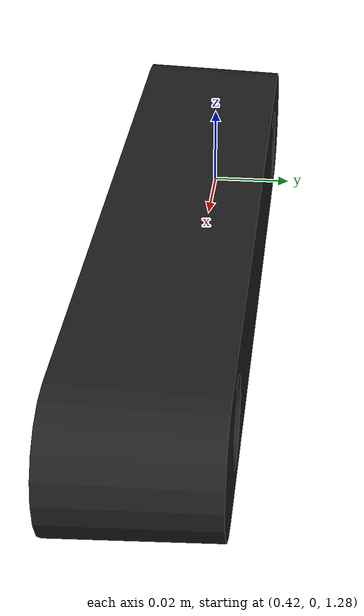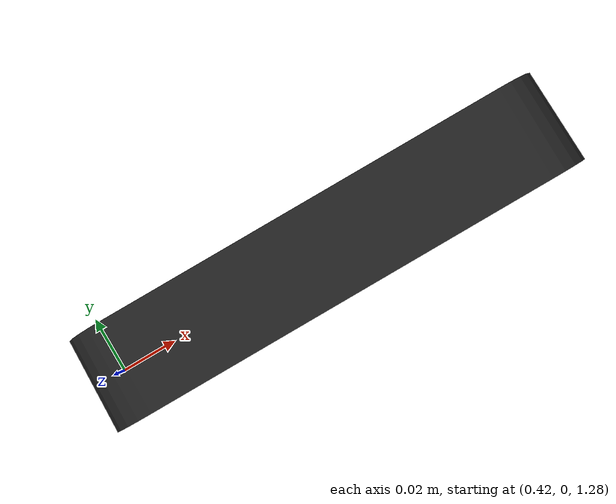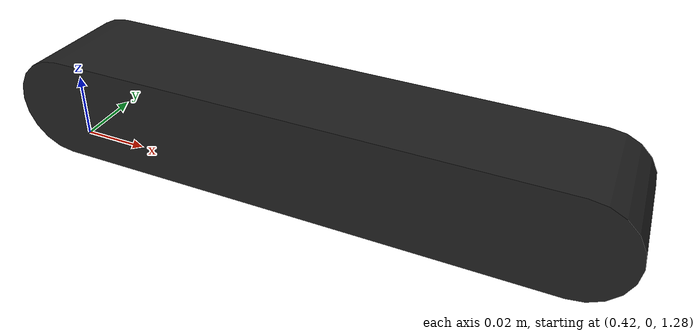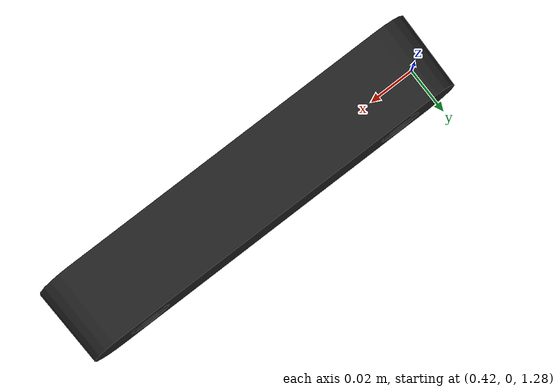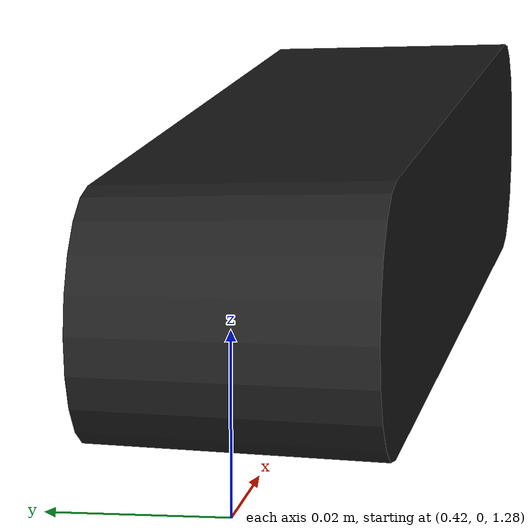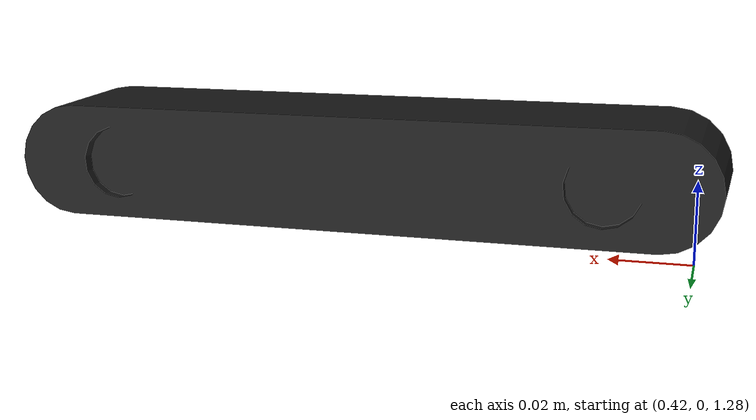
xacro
<?xml version="1.0"?>
<robot xmlns:xacro="http://www.ros.org/wiki/xacro" name="zed_standlone">

    <!-- zed2 -->
    <xacro:arg name="zed2_x" default="0.5"/>
    <xacro:arg name="zed2_y" default="0.0"/>
    <xacro:arg name="zed2_z" default="1.3"/>
    <xacro:arg name="zed2_roll" default="0.0"/>
    <xacro:arg name="zed2_pitch" default="0.0"/>
    <xacro:arg name="zed2_yaw" default="1.5707963267949"/>

    <xacro:property name="noise" value="0.000" />

    <link name="world"/>

    <joint name="fixed" type="fixed">
        <parent link="world"/>
        <child link="base_link"/>
    </joint>

    <link name="base_link"/>

    <!-- zed2 -->
    <xacro:include filename="$(find sensors_description)/urdf/zed2.urdf.xacro"/>
    <xacro:zed2_camera parent="base_link" camera_name="zed2" noise="${noise}">
        <origin xyz="$(arg zed2_x) $(arg zed2_y) $(arg zed2_z)" rpy="$(arg zed2_roll) $(arg zed2_pitch) $(arg zed2_yaw)" />
    </xacro:zed2_camera>

</robot>

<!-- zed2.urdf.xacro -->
<robot xmlns:xacro="http://www.ros.org/wiki/xacro" name="zed2_camera">

    <!-- Properties -->
    <xacro:property name="baseline" value="0.12"/>
    <xacro:property name="hfov" value="92.329636758468765228252815135916"/>
    <xacro:property name="M_PI" value="3.1415926535897931"/>

    <!-- Includes -->
    <xacro:include filename="$(find sensors_description)/materials/zed_materials.urdf.xacro"/>
    <xacro:include filename="$(find sensors_description)/urdf/camera.gazebo.xacro"/>

    <!-- Macro -->
    <xacro:macro name="zed2_camera"
                 params="*origin parent:=base_frame camera_name:=zed2 image_width:=2208 image_height:=1242 hz:=15 image_format:=B8G8R8 noise:=0.0">

        <!-- Camera body -->
        <joint name="${camera_name}_base_joint" type="fixed">
            <parent link="${parent}"/>
            <child link="${camera_name}_body"/>
            <xacro:insert_block name="origin"/>
        </joint>

        <link name="${camera_name}_body">
            <inertial>
                <origin
                        xyz="0 0 0"
                        rpy="0 0 0"/>
                <mass
                        value="1.2318"/>
                <inertia
                        ixx="0.0029695"
                        ixy="1.6071E-08"
                        ixz="7.94620000000098E-12"
                        iyy="0.0029965"
                        iyz="2.55599998283537E-11"
                        izz="0.00019321"/>
            </inertial>
            <visual>
                <origin xyz="0 0 0" rpy="0 0 0"/>
                <geometry>
                    <mesh filename="package://sensors_description/meshes/zed2.STL"/>
                </geometry>
                <material name="zed2_mat"/>
            </visual>
            <collision>
                <origin rpy="0 0 0" xyz="0 0 0"/>
                <geometry>
                    <mesh filename="package://sensors_description/meshes/zed2.STL"/>
                </geometry>
            </collision>
        </link>

        <gazebo reference="${camera_name}_body">
            <material>Gazebo/Black</material>
        </gazebo>

        <!-- Left Camera -->
        <joint name="${camera_name}_left_camera_joint" type="fixed">
            <parent link="${camera_name}_body"/>
            <child link="${camera_name}_left_frame"/>
            <origin xyz="0 ${baseline/2} 0" rpy="0.0 0.0 0.0" />
        </joint>

        <link name="${camera_name}_left_frame"/>

        <joint name="${camera_name}_left_optical_joint" type="fixed">
            <origin xyz="0 0 0" rpy="${-M_PI/2} 0.0 ${-M_PI/2}"/>
            <parent link="${camera_name}_left_frame"/>
            <child link="${camera_name}_left_optical_frame"/>
        </joint>

        <link name="${camera_name}_left_optical_frame"/>

        <xacro:rgb_gazebo reference="${camera_name}_left_frame" name="left_camera" image_width="${image_width}"
                          image_height="${image_height}" hz="${hz}" image_format="${image_format}"
                          frame_id="${camera_name}_left_optical_frame" hfov="${hfov}"
                          focal_length="0" noise="${noise}">
        </xacro:rgb_gazebo>

        <!-- Right Camera -->
        <joint name="${camera_name}_right_camera_joint" type="fixed">
            <parent link="${camera_name}_body"/>
            <child link="${camera_name}_right_frame"/>
            <origin xyz="0 0 0" rpy="0.0 0.0 0.0"/>
        </joint>

        <link name="${camera_name}_right_frame"/>

        <joint name="${camera_name}_right_optical_joint" type="fixed">
            <origin xyz="0 0 0" rpy="${-M_PI/2} 0.0 ${-M_PI/2}"/>
            <parent link="${camera_name}_right_frame"/>
            <child link="${camera_name}_right_optical_frame"/>
        </joint>

        <link name="${camera_name}_right_optical_frame"/>

        <xacro:rgb_gazebo reference="${camera_name}_right_frame" name="right_camera" image_width="${image_width}"
                          image_height="${image_height}" hz="${hz}" image_format="${image_format}"
                          frame_id="${camera_name}_right_optical_frame" hfov="${hfov}"
                          focal_length="0" noise="${noise}">
        </xacro:rgb_gazebo>
    </xacro:macro>
</robot>
